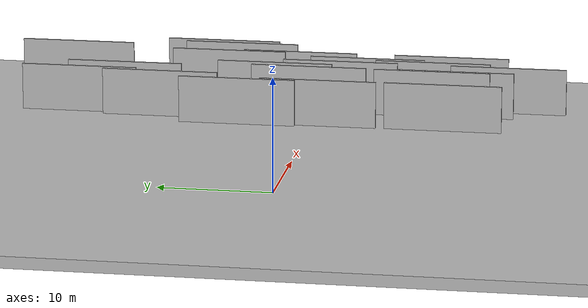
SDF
<?xml version="1.0" encoding="utf-8"?>

<sdf version="1.6">

   <world name="default">

      <gui fullscreen="0">

         <camera name="user_camera">

            <pose>-15 0 4.57585 0 0 0</pose>

            <view_controller>orbit</view_controller>

         </camera>

      </gui>

      <scene>

         <sky>

           <clouds>

             <speed>12</speed>

           </clouds>

         </sky>

         <ambient>0.4 0.4 0.4 1</ambient>

         <background>0.7 0.7 0.7 1</background>

         <shadows>1</shadows>

      </scene>

      <gravity>0 0 -9.8066</gravity>

      <magnetic_field>6e-06 2.3e-05 -4.2e-05</magnetic_field>

      <physics default="0" name="default_physics" type="ode">

         <ode>

            <solver>

               <type>quick</type>

               <iters>10</iters>

               <sor>1.0</sor>

               <use_dynamic_moi_rescaling>0</use_dynamic_moi_rescaling>

            </solver>

            <constraints>

               <cfm>0</cfm>

               <erp>0.2</erp>

               <contact_max_correcting_vel>100</contact_max_correcting_vel>

               <contact_surface_layer>0.001</contact_surface_layer>

            </constraints>

         </ode>

         <max_step_size>0.004</max_step_size>

         <real_time_factor>1</real_time_factor>

         <real_time_update_rate>250</real_time_update_rate>

      </physics>

      <light name="sun" type="directional">

         <cast_shadows>1</cast_shadows>

         <pose>0 0 10 0 0 0</pose>

         <diffuse>0.8 0.8 0.8 1</diffuse>

         <specular>0.2 0.2 0.2 1</specular>

         <attenuation>

            <range>1000</range>

            <constant>0.9</constant>

            <linear>0.01</linear>

            <quadratic>0.001</quadratic>

         </attenuation>

         <direction>-0.5 0.1 -0.9</direction>

      </light>

      <include>

         <name>ground_plane_1</name>

         <uri>model://HANNAS_ground_plane</uri>

         <pose>0 0 0  0 0 0</pose>

      </include>

      <include>

         <name>ground_plane_2</name>

         <uri>model://HANNAS_ground_plane</uri>

         <pose>100 0 0  0 0 0</pose>

      </include>

      <model name="HANNAS_wall_1">

         <static>1</static>

         <pose frame="">8.4671 -1.6978 5.0 0.000000 0.000000 1.570796</pose>

         <link name="link">

            <pose frame="">0 0 2.00 0 0 0</pose>

            <collision name="collision">

               <geometry>

                  <box>

                     <size>10.00 0.2 4.00</size>

                  </box>

               </geometry>

               <max_contacts>10</max_contacts>

               <surface>

                  <contact>

                     <ode/>

                  </contact>

                  <bounce/>

                  <friction>

                     <torsional>

                        <ode/>

                     </torsional>

                     <ode/>

                  </friction>

               </surface>

            </collision>

            <visual name="visual">

               <cast_shadows>0</cast_shadows>

               <geometry>

                  <box>

                     <size>10.00 0.2 4.00</size>

                  </box>

               </geometry>

               <material>

                  <script>

                     <uri>model://HANNAS_wall/materials/scripts</uri>

                     <uri>model://HANNAS_wall/materials/textures</uri>

                     <name>vrc/HANNAS_wall</name>

                  </script>

               </material>

            </visual>

            <self_collide>0</self_collide>

            <enable_wind>0</enable_wind>

            <kinematic>0</kinematic>

         </link>

      </model>

      <model name="HANNAS_wall_2">

         <static>1</static>

         <pose frame="">7.6468 14.2933 5.0 0.000000 0.000000 1.570796</pose>

         <link name="link">

            <pose frame="">0 0 2.00 0 0 0</pose>

            <collision name="collision">

               <geometry>

                  <box>

                     <size>10.00 0.2 4.00</size>

                  </box>

               </geometry>

               <max_contacts>10</max_contacts>

               <surface>

                  <contact>

                     <ode/>

                  </contact>

                  <bounce/>

                  <friction>

                     <torsional>

                        <ode/>

                     </torsional>

                     <ode/>

                  </friction>

               </surface>

            </collision>

            <visual name="visual">

               <cast_shadows>0</cast_shadows>

               <geometry>

                  <box>

                     <size>10.00 0.2 4.00</size>

                  </box>

               </geometry>

               <material>

                  <script>

                     <uri>model://HANNAS_wall/materials/scripts</uri>

                     <uri>model://HANNAS_wall/materials/textures</uri>

                     <name>vrc/HANNAS_wall</name>

                  </script>

               </material>

            </visual>

            <self_collide>0</self_collide>

            <enable_wind>0</enable_wind>

            <kinematic>0</kinematic>

         </link>

      </model>

      <model name="HANNAS_wall_3">

         <static>1</static>

         <pose frame="">11.5002 -12.1153 5.0 0.000000 0.000000 1.570796</pose>

         <link name="link">

            <pose frame="">0 0 2.00 0 0 0</pose>

            <collision name="collision">

               <geometry>

                  <box>

                     <size>10.00 0.2 4.00</size>

                  </box>

               </geometry>

               <max_contacts>10</max_contacts>

               <surface>

                  <contact>

                     <ode/>

                  </contact>

                  <bounce/>

                  <friction>

                     <torsional>

                        <ode/>

                     </torsional>

                     <ode/>

                  </friction>

               </surface>

            </collision>

            <visual name="visual">

               <cast_shadows>0</cast_shadows>

               <geometry>

                  <box>

                     <size>10.00 0.2 4.00</size>

                  </box>

               </geometry>

               <material>

                  <script>

                     <uri>model://HANNAS_wall/materials/scripts</uri>

                     <uri>model://HANNAS_wall/materials/textures</uri>

                     <name>vrc/HANNAS_wall</name>

                  </script>

               </material>

            </visual>

            <self_collide>0</self_collide>

            <enable_wind>0</enable_wind>

            <kinematic>0</kinematic>

         </link>

      </model>

      <model name="HANNAS_wall_4">

         <static>1</static>

         <pose frame="">5.0093 10.6952 5.0 0.000000 0.000000 1.570796</pose>

         <link name="link">

            <pose frame="">0 0 2.00 0 0 0</pose>

            <collision name="collision">

               <geometry>

                  <box>

                     <size>10.00 0.2 4.00</size>

                  </box>

               </geometry>

               <max_contacts>10</max_contacts>

               <surface>

                  <contact>

                     <ode/>

                  </contact>

                  <bounce/>

                  <friction>

                     <torsional>

                        <ode/>

                     </torsional>

                     <ode/>

                  </friction>

               </surface>

            </collision>

            <visual name="visual">

               <cast_shadows>0</cast_shadows>

               <geometry>

                  <box>

                     <size>10.00 0.2 4.00</size>

                  </box>

               </geometry>

               <material>

                  <script>

                     <uri>model://HANNAS_wall/materials/scripts</uri>

                     <uri>model://HANNAS_wall/materials/textures</uri>

                     <name>vrc/HANNAS_wall</name>

                  </script>

               </material>

            </visual>

            <self_collide>0</self_collide>

            <enable_wind>0</enable_wind>

            <kinematic>0</kinematic>

         </link>

      </model>

      <model name="HANNAS_wall_5">

         <static>1</static>

         <pose frame="">12.1381 -6.3088 5.0 0.000000 0.000000 1.570796</pose>

         <link name="link">

            <pose frame="">0 0 2.00 0 0 0</pose>

            <collision name="collision">

               <geometry>

                  <box>

                     <size>10.00 0.2 4.00</size>

                  </box>

               </geometry>

               <max_contacts>10</max_contacts>

               <surface>

                  <contact>

                     <ode/>

                  </contact>

                  <bounce/>

                  <friction>

                     <torsional>

                        <ode/>

                     </torsional>

                     <ode/>

                  </friction>

               </surface>

            </collision>

            <visual name="visual">

               <cast_shadows>0</cast_shadows>

               <geometry>

                  <box>

                     <size>10.00 0.2 4.00</size>

                  </box>

               </geometry>

               <material>

                  <script>

                     <uri>model://HANNAS_wall/materials/scripts</uri>

                     <uri>model://HANNAS_wall/materials/textures</uri>

                     <name>vrc/HANNAS_wall</name>

                  </script>

               </material>

            </visual>

            <self_collide>0</self_collide>

            <enable_wind>0</enable_wind>

            <kinematic>0</kinematic>

         </link>

      </model>

      <model name="HANNAS_wall_6">

         <static>1</static>

         <pose frame="">3.7926 -3.1855 5.0 0.000000 0.000000 1.570796</pose>

         <link name="link">

            <pose frame="">0 0 2.00 0 0 0</pose>

            <collision name="collision">

               <geometry>

                  <box>

                     <size>10.00 0.2 4.00</size>

                  </box>

               </geometry>

               <max_contacts>10</max_contacts>

               <surface>

                  <contact>

                     <ode/>

                  </contact>

                  <bounce/>

                  <friction>

                     <torsional>

                        <ode/>

                     </torsional>

                     <ode/>

                  </friction>

               </surface>

            </collision>

            <visual name="visual">

               <cast_shadows>0</cast_shadows>

               <geometry>

                  <box>

                     <size>10.00 0.2 4.00</size>

                  </box>

               </geometry>

               <material>

                  <script>

                     <uri>model://HANNAS_wall/materials/scripts</uri>

                     <uri>model://HANNAS_wall/materials/textures</uri>

                     <name>vrc/HANNAS_wall</name>

                  </script>

               </material>

            </visual>

            <self_collide>0</self_collide>

            <enable_wind>0</enable_wind>

            <kinematic>0</kinematic>

         </link>

      </model>

      <model name="HANNAS_wall_7">

         <static>1</static>

         <pose frame="">9.4521 1.4201 5.0 0.000000 0.000000 1.570796</pose>

         <link name="link">

            <pose frame="">0 0 2.00 0 0 0</pose>

            <collision name="collision">

               <geometry>

                  <box>

                     <size>10.00 0.2 4.00</size>

                  </box>

               </geometry>

               <max_contacts>10</max_contacts>

               <surface>

                  <contact>

                     <ode/>

                  </contact>

                  <bounce/>

                  <friction>

                     <torsional>

                        <ode/>

                     </torsional>

                     <ode/>

                  </friction>

               </surface>

            </collision>

            <visual name="visual">

               <cast_shadows>0</cast_shadows>

               <geometry>

                  <box>

                     <size>10.00 0.2 4.00</size>

                  </box>

               </geometry>

               <material>

                  <script>

                     <uri>model://HANNAS_wall/materials/scripts</uri>

                     <uri>model://HANNAS_wall/materials/textures</uri>

                     <name>vrc/HANNAS_wall</name>

                  </script>

               </material>

            </visual>

            <self_collide>0</self_collide>

            <enable_wind>0</enable_wind>

            <kinematic>0</kinematic>

         </link>

      </model>

      <model name="HANNAS_wall_8">

         <static>1</static>

         <pose frame="">14.5979 19.9348 5.0 0.000000 0.000000 1.570796</pose>

         <link name="link">

            <pose frame="">0 0 2.00 0 0 0</pose>

            <collision name="collision">

               <geometry>

                  <box>

                     <size>10.00 0.2 4.00</size>

                  </box>

               </geometry>

               <max_contacts>10</max_contacts>

               <surface>

                  <contact>

                     <ode/>

                  </contact>

                  <bounce/>

                  <friction>

                     <torsional>

                        <ode/>

                     </torsional>

                     <ode/>

                  </friction>

               </surface>

            </collision>

            <visual name="visual">

               <cast_shadows>0</cast_shadows>

               <geometry>

                  <box>

                     <size>10.00 0.2 4.00</size>

                  </box>

               </geometry>

               <material>

                  <script>

                     <uri>model://HANNAS_wall/materials/scripts</uri>

                     <uri>model://HANNAS_wall/materials/textures</uri>

                     <name>vrc/HANNAS_wall</name>

                  </script>

               </material>

            </visual>

            <self_collide>0</self_collide>

            <enable_wind>0</enable_wind>

            <kinematic>0</kinematic>

         </link>

      </model>

      <model name="HANNAS_wall_9">

         <static>1</static>

         <pose frame="">8.3537 -12.3968 5.0 0.000000 0.000000 1.570796</pose>

         <link name="link">

            <pose frame="">0 0 2.00 0 0 0</pose>

            <collision name="collision">

               <geometry>

                  <box>

                     <size>10.00 0.2 4.00</size>

                  </box>

               </geometry>

               <max_contacts>10</max_contacts>

               <surface>

                  <contact>

                     <ode/>

                  </contact>

                  <bounce/>

                  <friction>

                     <torsional>

                        <ode/>

                     </torsional>

                     <ode/>

                  </friction>

               </surface>

            </collision>

            <visual name="visual">

               <cast_shadows>0</cast_shadows>

               <geometry>

                  <box>

                     <size>10.00 0.2 4.00</size>

                  </box>

               </geometry>

               <material>

                  <script>

                     <uri>model://HANNAS_wall/materials/scripts</uri>

                     <uri>model://HANNAS_wall/materials/textures</uri>

                     <name>vrc/HANNAS_wall</name>

                  </script>

               </material>

            </visual>

            <self_collide>0</self_collide>

            <enable_wind>0</enable_wind>

            <kinematic>0</kinematic>

         </link>

      </model>

      <model name="HANNAS_wall_10">

         <static>1</static>

         <pose frame="">16.8935 7.1975 5.0 0.000000 0.000000 1.570796</pose>

         <link name="link">

            <pose frame="">0 0 2.00 0 0 0</pose>

            <collision name="collision">

               <geometry>

                  <box>

                     <size>10.00 0.2 4.00</size>

                  </box>

               </geometry>

               <max_contacts>10</max_contacts>

               <surface>

                  <contact>

                     <ode/>

                  </contact>

                  <bounce/>

                  <friction>

                     <torsional>

                        <ode/>

                     </torsional>

                     <ode/>

                  </friction>

               </surface>

            </collision>

            <visual name="visual">

               <cast_shadows>0</cast_shadows>

               <geometry>

                  <box>

                     <size>10.00 0.2 4.00</size>

                  </box>

               </geometry>

               <material>

                  <script>

                     <uri>model://HANNAS_wall/materials/scripts</uri>

                     <uri>model://HANNAS_wall/materials/textures</uri>

                     <name>vrc/HANNAS_wall</name>

                  </script>

               </material>

            </visual>

            <self_collide>0</self_collide>

            <enable_wind>0</enable_wind>

            <kinematic>0</kinematic>

         </link>

      </model>

      <model name="HANNAS_wall_11">

         <static>1</static>

         <pose frame="">16.0885 5.4564 5.0 0.000000 0.000000 1.570796</pose>

         <link name="link">

            <pose frame="">0 0 2.00 0 0 0</pose>

            <collision name="collision">

               <geometry>

                  <box>

                     <size>10.00 0.2 4.00</size>

                  </box>

               </geometry>

               <max_contacts>10</max_contacts>

               <surface>

                  <contact>

                     <ode/>

                  </contact>

                  <bounce/>

                  <friction>

                     <torsional>

                        <ode/>

                     </torsional>

                     <ode/>

                  </friction>

               </surface>

            </collision>

            <visual name="visual">

               <cast_shadows>0</cast_shadows>

               <geometry>

                  <box>

                     <size>10.00 0.2 4.00</size>

                  </box>

               </geometry>

               <material>

                  <script>

                     <uri>model://HANNAS_wall/materials/scripts</uri>

                     <uri>model://HANNAS_wall/materials/textures</uri>

                     <name>vrc/HANNAS_wall</name>

                  </script>

               </material>

            </visual>

            <self_collide>0</self_collide>

            <enable_wind>0</enable_wind>

            <kinematic>0</kinematic>

         </link>

      </model>

      <model name="HANNAS_wall_12">

         <static>1</static>

         <pose frame="">3.3902 3.7227 5.0 0.000000 0.000000 1.570796</pose>

         <link name="link">

            <pose frame="">0 0 2.00 0 0 0</pose>

            <collision name="collision">

               <geometry>

                  <box>

                     <size>10.00 0.2 4.00</size>

                  </box>

               </geometry>

               <max_contacts>10</max_contacts>

               <surface>

                  <contact>

                     <ode/>

                  </contact>

                  <bounce/>

                  <friction>

                     <torsional>

                        <ode/>

                     </torsional>

                     <ode/>

                  </friction>

               </surface>

            </collision>

            <visual name="visual">

               <cast_shadows>0</cast_shadows>

               <geometry>

                  <box>

                     <size>10.00 0.2 4.00</size>

                  </box>

               </geometry>

               <material>

                  <script>

                     <uri>model://HANNAS_wall/materials/scripts</uri>

                     <uri>model://HANNAS_wall/materials/textures</uri>

                     <name>vrc/HANNAS_wall</name>

                  </script>

               </material>

            </visual>

            <self_collide>0</self_collide>

            <enable_wind>0</enable_wind>

            <kinematic>0</kinematic>

         </link>

      </model>

      <model name="HANNAS_wall_13">

         <static>1</static>

         <pose frame="">13.2383 6.1250 5.0 0.000000 0.000000 1.570796</pose>

         <link name="link">

            <pose frame="">0 0 2.00 0 0 0</pose>

            <collision name="collision">

               <geometry>

                  <box>

                     <size>10.00 0.2 4.00</size>

                  </box>

               </geometry>

               <max_contacts>10</max_contacts>

               <surface>

                  <contact>

                     <ode/>

                  </contact>

                  <bounce/>

                  <friction>

                     <torsional>

                        <ode/>

                     </torsional>

                     <ode/>

                  </friction>

               </surface>

            </collision>

            <visual name="visual">

               <cast_shadows>0</cast_shadows>

               <geometry>

                  <box>

                     <size>10.00 0.2 4.00</size>

                  </box>

               </geometry>

               <material>

                  <script>

                     <uri>model://HANNAS_wall/materials/scripts</uri>

                     <uri>model://HANNAS_wall/materials/textures</uri>

                     <name>vrc/HANNAS_wall</name>

                  </script>

               </material>

            </visual>

            <self_collide>0</self_collide>

            <enable_wind>0</enable_wind>

            <kinematic>0</kinematic>

         </link>

      </model>

      <model name="HANNAS_wall_14">

         <static>1</static>

         <pose frame="">3.8675 -13.8784 5.0 0.000000 0.000000 1.570796</pose>

         <link name="link">

            <pose frame="">0 0 2.00 0 0 0</pose>

            <collision name="collision">

               <geometry>

                  <box>

                     <size>10.00 0.2 4.00</size>

                  </box>

               </geometry>

               <max_contacts>10</max_contacts>

               <surface>

                  <contact>

                     <ode/>

                  </contact>

                  <bounce/>

                  <friction>

                     <torsional>

                        <ode/>

                     </torsional>

                     <ode/>

                  </friction>

               </surface>

            </collision>

            <visual name="visual">

               <cast_shadows>0</cast_shadows>

               <geometry>

                  <box>

                     <size>10.00 0.2 4.00</size>

                  </box>

               </geometry>

               <material>

                  <script>

                     <uri>model://HANNAS_wall/materials/scripts</uri>

                     <uri>model://HANNAS_wall/materials/textures</uri>

                     <name>vrc/HANNAS_wall</name>

                  </script>

               </material>

            </visual>

            <self_collide>0</self_collide>

            <enable_wind>0</enable_wind>

            <kinematic>0</kinematic>

         </link>

      </model>

      <model name="HANNAS_wall_15">

         <static>1</static>

         <pose frame="">13.5792 -0.1667 5.0 0.000000 0.000000 1.570796</pose>

         <link name="link">

            <pose frame="">0 0 2.00 0 0 0</pose>

            <collision name="collision">

               <geometry>

                  <box>

                     <size>10.00 0.2 4.00</size>

                  </box>

               </geometry>

               <max_contacts>10</max_contacts>

               <surface>

                  <contact>

                     <ode/>

                  </contact>

                  <bounce/>

                  <friction>

                     <torsional>

                        <ode/>

                     </torsional>

                     <ode/>

                  </friction>

               </surface>

            </collision>

            <visual name="visual">

               <cast_shadows>0</cast_shadows>

               <geometry>

                  <box>

                     <size>10.00 0.2 4.00</size>

                  </box>

               </geometry>

               <material>

                  <script>

                     <uri>model://HANNAS_wall/materials/scripts</uri>

                     <uri>model://HANNAS_wall/materials/textures</uri>

                     <name>vrc/HANNAS_wall</name>

                  </script>

               </material>

            </visual>

            <self_collide>0</self_collide>

            <enable_wind>0</enable_wind>

            <kinematic>0</kinematic>

         </link>

      </model>

      <model name="HANNAS_wall_16">

         <static>1</static>

         <pose frame="">5.6091 17.8935 5.0 0.000000 0.000000 1.570796</pose>

         <link name="link">

            <pose frame="">0 0 2.00 0 0 0</pose>

            <collision name="collision">

               <geometry>

                  <box>

                     <size>10.00 0.2 4.00</size>

                  </box>

               </geometry>

               <max_contacts>10</max_contacts>

               <surface>

                  <contact>

                     <ode/>

                  </contact>

                  <bounce/>

                  <friction>

                     <torsional>

                        <ode/>

                     </torsional>

                     <ode/>

                  </friction>

               </surface>

            </collision>

            <visual name="visual">

               <cast_shadows>0</cast_shadows>

               <geometry>

                  <box>

                     <size>10.00 0.2 4.00</size>

                  </box>

               </geometry>

               <material>

                  <script>

                     <uri>model://HANNAS_wall/materials/scripts</uri>

                     <uri>model://HANNAS_wall/materials/textures</uri>

                     <name>vrc/HANNAS_wall</name>

                  </script>

               </material>

            </visual>

            <self_collide>0</self_collide>

            <enable_wind>0</enable_wind>

            <kinematic>0</kinematic>

         </link>

      </model>

      <model name="HANNAS_wall_17">

         <static>1</static>

         <pose frame="">8.5728 -14.4339 5.0 0.000000 0.000000 1.570796</pose>

         <link name="link">

            <pose frame="">0 0 2.00 0 0 0</pose>

            <collision name="collision">

               <geometry>

                  <box>

                     <size>10.00 0.2 4.00</size>

                  </box>

               </geometry>

               <max_contacts>10</max_contacts>

               <surface>

                  <contact>

                     <ode/>

                  </contact>

                  <bounce/>

                  <friction>

                     <torsional>

                        <ode/>

                     </torsional>

                     <ode/>

                  </friction>

               </surface>

            </collision>

            <visual name="visual">

               <cast_shadows>0</cast_shadows>

               <geometry>

                  <box>

                     <size>10.00 0.2 4.00</size>

                  </box>

               </geometry>

               <material>

                  <script>

                     <uri>model://HANNAS_wall/materials/scripts</uri>

                     <uri>model://HANNAS_wall/materials/textures</uri>

                     <name>vrc/HANNAS_wall</name>

                  </script>

               </material>

            </visual>

            <self_collide>0</self_collide>

            <enable_wind>0</enable_wind>

            <kinematic>0</kinematic>

         </link>

      </model>

      <model name="HANNAS_wall_18">

         <static>1</static>

         <pose frame="">10.5792 -18.7793 5.0 0.000000 0.000000 1.570796</pose>

         <link name="link">

            <pose frame="">0 0 2.00 0 0 0</pose>

            <collision name="collision">

               <geometry>

                  <box>

                     <size>10.00 0.2 4.00</size>

                  </box>

               </geometry>

               <max_contacts>10</max_contacts>

               <surface>

                  <contact>

                     <ode/>

                  </contact>

                  <bounce/>

                  <friction>

                     <torsional>

                        <ode/>

                     </torsional>

                     <ode/>

                  </friction>

               </surface>

            </collision>

            <visual name="visual">

               <cast_shadows>0</cast_shadows>

               <geometry>

                  <box>

                     <size>10.00 0.2 4.00</size>

                  </box>

               </geometry>

               <material>

                  <script>

                     <uri>model://HANNAS_wall/materials/scripts</uri>

                     <uri>model://HANNAS_wall/materials/textures</uri>

                     <name>vrc/HANNAS_wall</name>

                  </script>

               </material>

            </visual>

            <self_collide>0</self_collide>

            <enable_wind>0</enable_wind>

            <kinematic>0</kinematic>

         </link>

      </model>

      <model name="HANNAS_wall_19">

         <static>1</static>

         <pose frame="">10.6783 -4.1365 5.0 0.000000 0.000000 1.570796</pose>

         <link name="link">

            <pose frame="">0 0 2.00 0 0 0</pose>

            <collision name="collision">

               <geometry>

                  <box>

                     <size>10.00 0.2 4.00</size>

                  </box>

               </geometry>

               <max_contacts>10</max_contacts>

               <surface>

                  <contact>

                     <ode/>

                  </contact>

                  <bounce/>

                  <friction>

                     <torsional>

                        <ode/>

                     </torsional>

                     <ode/>

                  </friction>

               </surface>

            </collision>

            <visual name="visual">

               <cast_shadows>0</cast_shadows>

               <geometry>

                  <box>

                     <size>10.00 0.2 4.00</size>

                  </box>

               </geometry>

               <material>

                  <script>

                     <uri>model://HANNAS_wall/materials/scripts</uri>

                     <uri>model://HANNAS_wall/materials/textures</uri>

                     <name>vrc/HANNAS_wall</name>

                  </script>

               </material>

            </visual>

            <self_collide>0</self_collide>

            <enable_wind>0</enable_wind>

            <kinematic>0</kinematic>

         </link>

      </model>

      <model name="HANNAS_wall_20">

         <static>1</static>

         <pose frame="">13.6532 -13.4886 5.0 0.000000 0.000000 1.570796</pose>

         <link name="link">

            <pose frame="">0 0 2.00 0 0 0</pose>

            <collision name="collision">

               <geometry>

                  <box>

                     <size>10.00 0.2 4.00</size>

                  </box>

               </geometry>

               <max_contacts>10</max_contacts>

               <surface>

                  <contact>

                     <ode/>

                  </contact>

                  <bounce/>

                  <friction>

                     <torsional>

                        <ode/>

                     </torsional>

                     <ode/>

                  </friction>

               </surface>

            </collision>

            <visual name="visual">

               <cast_shadows>0</cast_shadows>

               <geometry>

                  <box>

                     <size>10.00 0.2 4.00</size>

                  </box>

               </geometry>

               <material>

                  <script>

                     <uri>model://HANNAS_wall/materials/scripts</uri>

                     <uri>model://HANNAS_wall/materials/textures</uri>

                     <name>vrc/HANNAS_wall</name>

                  </script>

               </material>

            </visual>

            <self_collide>0</self_collide>

            <enable_wind>0</enable_wind>

            <kinematic>0</kinematic>

         </link>

      </model>

   </world>

</sdf>

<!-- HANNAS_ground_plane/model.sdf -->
<sdf version="1.4">
<model name="HANNAS_ground_plane">
  <static>true</static>
    <link name="link">
      <collision name="collision">
        <geometry>
          <plane>
            <normal>0 0 1</normal>
            <size>1000 1000</size>
          </plane>
        </geometry>
        <surface>
          <friction>
            <ode>
              <mu>100</mu>
              <mu2>50</mu2>
            </ode>
          </friction>
        </surface>
      </collision>
      <visual name="visual">
        <cast_shadows>false</cast_shadows>
        <geometry>
          <plane>
            <normal>0 0 1</normal>
            <size>1000 1000</size>
          </plane>
        </geometry>
        <material>
          <script>
            <uri>model://HANNAS_ground_plane/materials/scripts/HANNAS_ground_plane.material</uri>
	    <uri>model://HANNAS_ground_plane/materials/textures</uri>
            <name>HANNASGroundPlane/Image</name>
          </script>
        </material>
      </visual>
    </link>
  </model>
</sdf>
